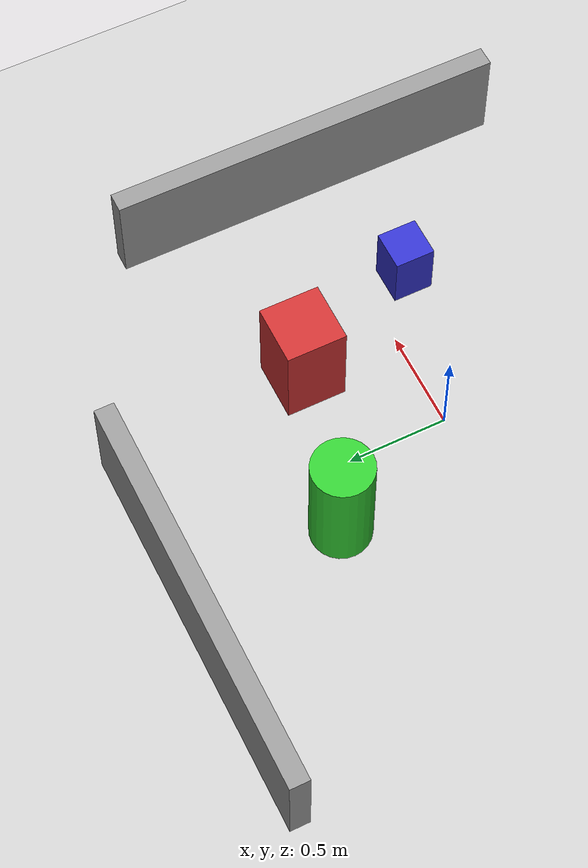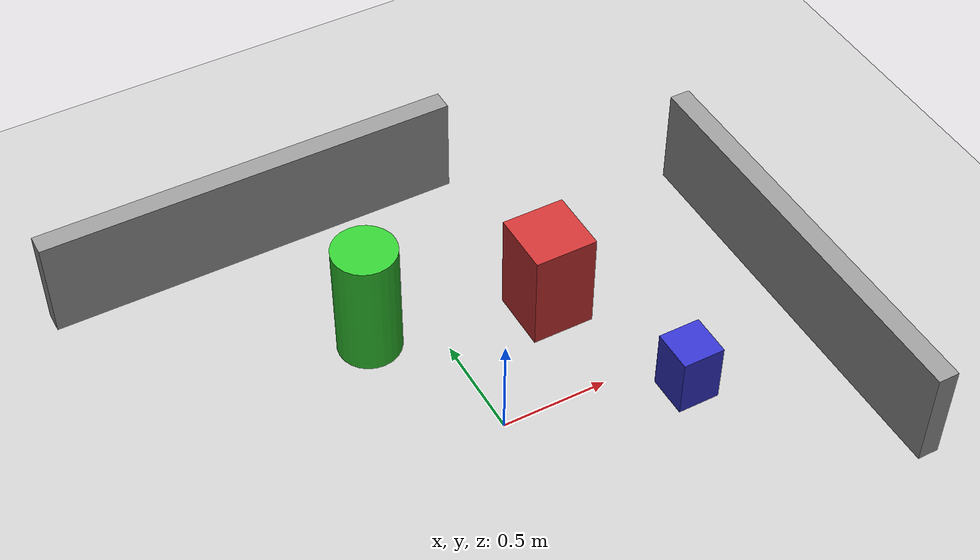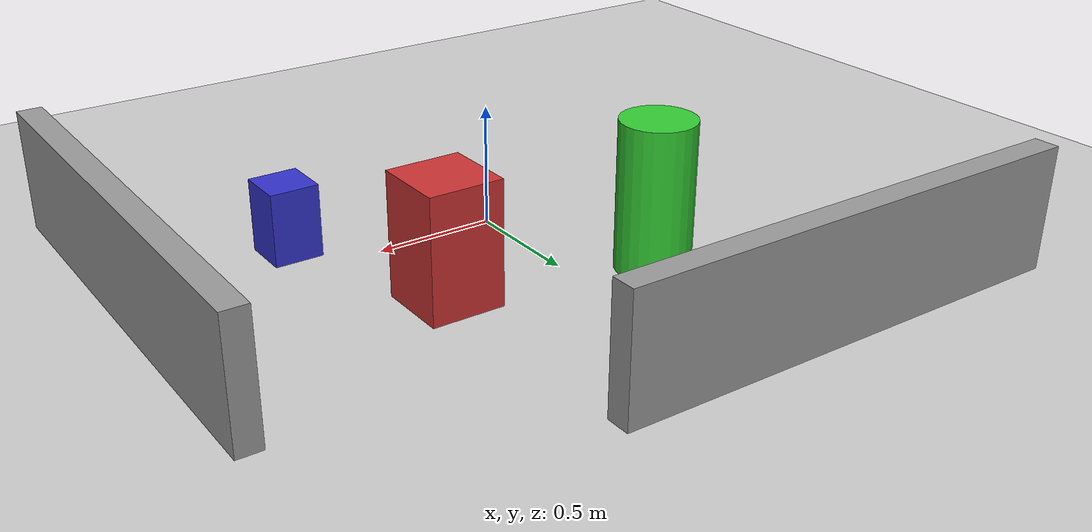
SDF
<?xml version="1.0"?>
<sdf version="1.6">
  <world name="slam_test_world">
    <!-- Basic world setup with Ignition Gazebo compatible elements -->

    <!-- Ground plane -->
    <model name="ground_plane">
      <static>true</static>
      <pose>0 0 0 0 0 0</pose>
      <link name="link">
        <collision name="collision">
          <geometry>
            <plane>
              <normal>0 0 1</normal>
              <size>20 20</size>
            </plane>
          </geometry>
        </collision>
        <visual name="visual">
          <geometry>
            <plane>
              <normal>0 0 1</normal>
              <size>20 20</size>
            </plane>
          </geometry>
          <material>
            <ambient>0.8 0.8 0.8 1</ambient>
            <diffuse>0.8 0.8 0.8 1</diffuse>
            <specular>0.1 0.1 0.1 1</specular>
          </material>
        </visual>
      </link>
    </model>

    <!-- Physics settings optimized for SLAM testing -->
    <physics name="default_physics" default="0" type="ode">
      <max_step_size>0.001</max_step_size>
      <real_time_factor>1.0</real_time_factor>
      <real_time_update_rate>1000</real_time_update_rate>
    </physics>

    <!-- Obstacle 1: Box at position that will be encountered during square traversal -->
    <model name="obstacle_box_1">
      <pose>0.5 0.5 0.25 0 0 0</pose>
      <static>true</static>
      <link name="link">
        <collision name="collision">
          <geometry>
            <box>
              <size>0.3 0.3 0.5</size>
            </box>
          </geometry>
        </collision>
        <visual name="visual">
          <geometry>
            <box>
              <size>0.3 0.3 0.5</size>
            </box>
          </geometry>
          <material>
            <ambient>0.8 0.2 0.2 1</ambient>
            <diffuse>0.8 0.2 0.2 1</diffuse>
            <specular>0.1 0.1 0.1 1</specular>
          </material>
        </visual>
      </link>
    </model>

    <!-- Obstacle 2: Cylinder at another position along the square path -->
    <model name="obstacle_cylinder_1">
      <pose>-0.3 0.7 0.3 0 0 0</pose>
      <static>true</static>
      <link name="link">
        <collision name="collision">
          <geometry>
            <cylinder>
              <radius>0.15</radius>
              <length>0.6</length>
            </cylinder>
          </geometry>
        </collision>
        <visual name="visual">
          <geometry>
            <cylinder>
              <radius>0.15</radius>
              <length>0.6</length>
            </cylinder>
          </geometry>
          <material>
            <ambient>0.2 0.8 0.2 1</ambient>
            <diffuse>0.2 0.8 0.2 1</diffuse>
            <specular>0.1 0.1 0.1 1</specular>
          </material>
        </visual>
      </link>
    </model>

    <!-- Additional small obstacles for detection variety -->
    <model name="obstacle_small_1">
      <pose>0.8 -0.2 0.15 0 0 0</pose>
      <static>true</static>
      <link name="link">
        <collision name="collision">
          <geometry>
            <box>
              <size>0.2 0.2 0.3</size>
            </box>
          </geometry>
        </collision>
        <visual name="visual">
          <geometry>
            <box>
              <size>0.2 0.2 0.3</size>
            </box>
          </geometry>
          <material>
            <ambient>0.2 0.2 0.8 1</ambient>
            <diffuse>0.2 0.2 0.8 1</diffuse>
            <specular>0.1 0.1 0.1 1</specular>
          </material>
        </visual>
      </link>
    </model>

    <!-- Wall segments to create more interesting SLAM environment -->
    <model name="wall_segment_1">
      <pose>1.5 0 0.25 0 0 0</pose>
      <static>true</static>
      <link name="link">
        <collision name="collision">
          <geometry>
            <box>
              <size>0.1 2.0 0.5</size>
            </box>
          </geometry>
        </collision>
        <visual name="visual">
          <geometry>
            <box>
              <size>0.1 2.0 0.5</size>
            </box>
          </geometry>
          <material>
            <ambient>0.6 0.6 0.6 1</ambient>
            <diffuse>0.6 0.6 0.6 1</diffuse>
            <specular>0.1 0.1 0.1 1</specular>
          </material>
        </visual>
      </link>
    </model>

    <model name="wall_segment_2">
      <pose>-0.5 1.5 0.25 0 0 1.57</pose>
      <static>true</static>
      <link name="link">
        <collision name="collision">
          <geometry>
            <box>
              <size>0.1 2.0 0.5</size>
            </box>
          </geometry>
        </collision>
        <visual name="visual">
          <geometry>
            <box>
              <size>0.1 2.0 0.5</size>
            </box>
          </geometry>
          <material>
            <ambient>0.6 0.6 0.6 1</ambient>
            <diffuse>0.6 0.6 0.6 1</diffuse>
            <specular>0.1 0.1 0.1 1</specular>
          </material>
        </visual>
      </link>
    </model>

    <!-- Scene lighting -->
    <light type="directional" name="sun">
      <cast_shadows>true</cast_shadows>
      <pose>0 0 10 0 0 0</pose>
      <diffuse>0.8 0.8 0.8 1</diffuse>
      <specular>0.2 0.2 0.2 1</specular>
      <attenuation>
        <range>1000</range>
        <constant>0.9</constant>
        <linear>0.01</linear>
        <quadratic>0.001</quadratic>
      </attenuation>
      <direction>-0.5 0.1 -0.9</direction>
    </light>

    <!-- World GUI settings -->
    <gui fullscreen='0'>
      <camera name='user_camera'>
        <pose>5.0 -5.0 2.0 0 0.275 2.356</pose>
        <view_controller>orbit</view_controller>
      </camera>
    </gui>

  </world>
</sdf>
